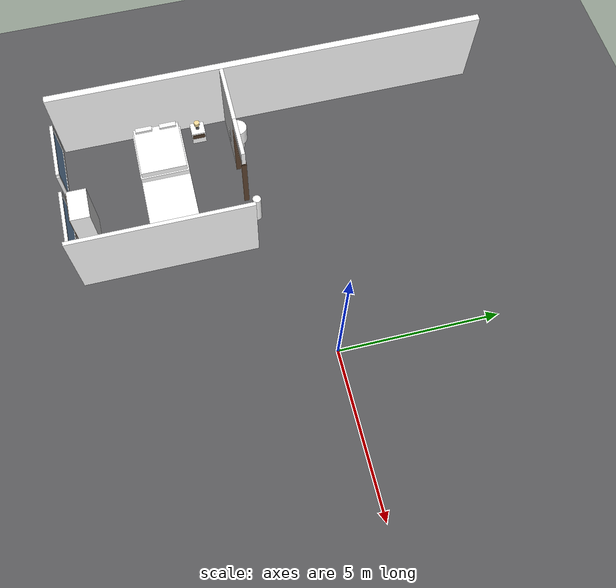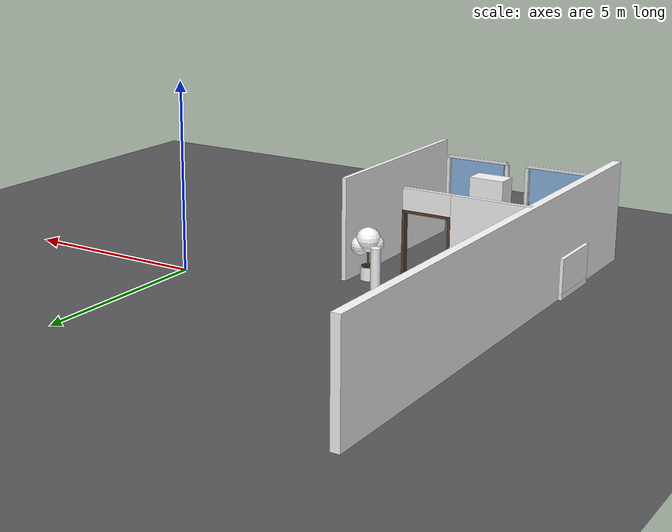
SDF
<sdf version="1.9">
 <world name="dan_house">
  <model name="ground_plane">
   <static>true</static>
   <link name="link">
    <collision name="c"><geometry><plane><normal>0 0 1</normal><size>90 90</size></plane></geometry></collision>
    <visual name="v">
     <geometry><plane><normal>0 0 1</normal><size>90 90</size></plane></geometry>
     <material><diffuse>0.35 0.35 0.36 1</diffuse></material>
    </visual>
   </link>
  </model>
  <model name="wall_west_0">
   <pose>-9.0 0.000 1.35 0 0 0</pose>
   <static>true</static>
   <link name="link">
    <collision name="c"><geometry><box><size>0.22 14.000 2.7</size></box></geometry></collision>
    <visual name="v">
     <geometry><box><size>0.22 14.000 2.7</size></box></geometry>
     <material>
      <diffuse>1 1 1 1</diffuse>
      <pbr>
       <metal>
        <albedo_map>textures/wallpaper.jpg</albedo_map>
        <metalness>0.0</metalness>
        <roughness>0.85</roughness>
       </metal>
      </pbr>
     </material>
    </visual>
   </link>
  </model>
  <model name="wall_corr_south_0">
   <pose>-7.975 -1.5 1.35 0 0 0</pose>
   <static>true</static>
   <link name="link">
    <collision name="c"><geometry><box><size>2.050 0.12 2.7</size></box></geometry></collision>
    <visual name="v">
     <geometry><box><size>2.050 0.12 2.7</size></box></geometry>
     <material>
      <diffuse>1 1 1 1</diffuse>
      <pbr>
       <metal>
        <albedo_map>textures/wallpaper.jpg</albedo_map>
        <metalness>0.0</metalness>
        <roughness>0.85</roughness>
       </metal>
      </pbr>
     </material>
    </visual>
   </link>
  </model>
  <model name="wall_corr_south_door_-6.3_p0">
   <pose>-6.915 -1.5 1.075 0 0 0</pose>
   <static>true</static>
   <link name="link">
    <visual name="v">
     <geometry><box><size>0.07 0.160 2.15</size></box></geometry>
     <material><diffuse>0.36 0.26 0.18 1</diffuse></material>
    </visual>
   </link>
  </model>
  <model name="wall_corr_south_door_-6.3_p1">
   <pose>-5.685 -1.5 1.075 0 0 0</pose>
   <static>true</static>
   <link name="link">
    <visual name="v">
     <geometry><box><size>0.07 0.160 2.15</size></box></geometry>
     <material><diffuse>0.36 0.26 0.18 1</diffuse></material>
    </visual>
   </link>
  </model>
  <model name="wall_corr_south_door_-6.3_top">
   <pose>-6.3 -1.5 2.1149999999999998 0 0 0</pose>
   <static>true</static>
   <link name="link">
    <visual name="v">
     <geometry><box><size>1.3 0.160 0.07</size></box></geometry>
     <material><diffuse>0.36 0.26 0.18 1</diffuse></material>
    </visual>
   </link>
  </model>
  <model name="wall_corr_south_door_-6.3_lintel">
   <pose>-6.3 -1.5 2.4000000000000004 0 0 0</pose>
   <static>true</static>
   <link name="link">
    <visual name="v">
     <geometry><box><size>1.3 0.12 0.600</size></box></geometry>
     <material>
      <diffuse>1 1 1 1</diffuse>
      <pbr>
       <metal>
        <albedo_map>textures/wallpaper.jpg</albedo_map>
        <metalness>0.0</metalness>
        <roughness>0.85</roughness>
       </metal>
      </pbr>
     </material>
    </visual>
   </link>
  </model>
  <model name="wall_bed1_bed2_0">
   <pose>-3.94 -4.250 1.35 0 0 0</pose>
   <static>true</static>
   <link name="link">
    <collision name="c"><geometry><box><size>0.12 5.500 2.7</size></box></geometry></collision>
    <visual name="v">
     <geometry><box><size>0.12 5.500 2.7</size></box></geometry>
     <material>
      <diffuse>1 1 1 1</diffuse>
      <pbr>
       <metal>
        <albedo_map>textures/wallpaper.jpg</albedo_map>
        <metalness>0.0</metalness>
        <roughness>0.85</roughness>
       </metal>
      </pbr>
     </material>
    </visual>
   </link>
  </model>
  <model name="window_s1">
   <pose>-7.4 -6.95 1.6 0 0 0</pose>
   <static>true</static>
   <link name="link">
    <visual name="pane">
     <geometry><box><size>1.62 0.06 1.2</size></box></geometry>
     <material><diffuse>0.55 0.72 0.9 1</diffuse><emissive>0.14 0.2 0.3</emissive></material>
    </visual>
    <visual name="ft">
     <pose>0 0 0.65 0 0 0</pose>
     <geometry><box><size>1.80 0.1 0.08</size></box></geometry>
     <material><diffuse>0.95 0.95 0.95 1</diffuse></material>
    </visual>
    <visual name="fb">
     <pose>0 0 -0.65 0 0 0</pose>
     <geometry><box><size>1.80 0.1 0.08</size></box></geometry>
     <material><diffuse>0.95 0.95 0.95 1</diffuse></material>
    </visual>
    <visual name="fl">
     <pose>-0.90 0 0 0 0 0</pose>
     <geometry><box><size>0.1 0.1 1.2</size></box></geometry>
     <material><diffuse>0.95 0.95 0.95 1</diffuse></material>
    </visual>
    <visual name="fr">
     <pose>0.90 0 0 0 0 0</pose>
     <geometry><box><size>0.1 0.1 1.2</size></box></geometry>
     <material><diffuse>0.95 0.95 0.95 1</diffuse></material>
    </visual>
   </link>
  </model>
  <model name="window_s2">
   <pose>-5.0 -6.95 1.6 0 0 0</pose>
   <static>true</static>
   <link name="link">
    <visual name="pane">
     <geometry><box><size>1.62 0.06 1.2</size></box></geometry>
     <material><diffuse>0.55 0.72 0.9 1</diffuse><emissive>0.14 0.2 0.3</emissive></material>
    </visual>
    <visual name="ft">
     <pose>0 0 0.65 0 0 0</pose>
     <geometry><box><size>1.80 0.1 0.08</size></box></geometry>
     <material><diffuse>0.95 0.95 0.95 1</diffuse></material>
    </visual>
    <visual name="fb">
     <pose>0 0 -0.65 0 0 0</pose>
     <geometry><box><size>1.80 0.1 0.08</size></box></geometry>
     <material><diffuse>0.95 0.95 0.95 1</diffuse></material>
    </visual>
    <visual name="fl">
     <pose>-0.90 0 0 0 0 0</pose>
     <geometry><box><size>0.1 0.1 1.2</size></box></geometry>
     <material><diffuse>0.95 0.95 0.95 1</diffuse></material>
    </visual>
    <visual name="fr">
     <pose>0.90 0 0 0 0 0</pose>
     <geometry><box><size>0.1 0.1 1.2</size></box></geometry>
     <material><diffuse>0.95 0.95 0.95 1</diffuse></material>
    </visual>
   </link>
  </model>
  <model name="bed">
   <pose>-8.15 -3.9 0 0 0 -1.5708</pose>
   <static>true</static>
   <link name="link">
    <collision name="c">
     <pose>0 0 0.225 0 0 0</pose>
     <geometry><box><size>1.5 2.0 0.45</size></box></geometry>
    </collision>
    <visual name="frame">
     <pose>0 0 0.11 0 0 0</pose>
     <geometry><box><size>1.6 2.1 0.22</size></box></geometry>
     <material>
      <diffuse>1 1 1 1</diffuse>
      <pbr>
       <metal>
        <albedo_map>textures/wood_dark.jpg</albedo_map>
        <metalness>0.0</metalness>
        <roughness>0.85</roughness>
       </metal>
      </pbr>
     </material>
    </visual>
    <visual name="mattress">
     <pose>0 0 0.33 0 0 0</pose>
     <geometry><box><size>1.5 2.0 0.22</size></box></geometry>
     <material>
      <diffuse>1 1 1 1</diffuse>
      <pbr>
       <metal>
        <albedo_map>textures/bedding.jpg</albedo_map>
        <metalness>0.0</metalness>
        <roughness>0.85</roughness>
       </metal>
      </pbr>
     </material>
    </visual>
    <visual name="head">
     <pose>0 -1.0 0.6 0 0 0</pose>
     <geometry><box><size>1.6 0.1 0.9</size></box></geometry>
     <material>
      <diffuse>1 1 1 1</diffuse>
      <pbr>
       <metal>
        <albedo_map>textures/wood_dark.jpg</albedo_map>
        <metalness>0.0</metalness>
        <roughness>0.85</roughness>
       </metal>
      </pbr>
     </material>
    </visual>
    <visual name="p1">
     <pose>-0.4 -0.75 0.48 0 0 0</pose>
     <geometry><box><size>0.55 0.35 0.09</size></box></geometry>
     <material><diffuse>0.95 0.95 0.95 1</diffuse></material>
    </visual>
    <visual name="p2">
     <pose>0.4 -0.75 0.48 0 0 0</pose>
     <geometry><box><size>0.55 0.35 0.09</size></box></geometry>
     <material><diffuse>0.95 0.95 0.95 1</diffuse></material>
    </visual>
   </link>
  </model>
  <model name="nightstand">
   <pose>-8.45 -2.55 0 0 0 0.0</pose>
   <static>true</static>
   <link name="link">
    <collision name="c">
     <pose>0 0 0.250 0 0 0</pose>
     <geometry><box><size>0.45 0.45 0.500</size></box></geometry>
    </collision>
    <visual name="body">
     <pose>0 0 0.250 0 0 0</pose>
     <geometry><box><size>0.45 0.45 0.500</size></box></geometry>
     <material>
      <diffuse>1 1 1 1</diffuse>
      <pbr>
       <metal>
        <albedo_map>textures/wood_dark.jpg</albedo_map>
        <metalness>0.0</metalness>
        <roughness>0.85</roughness>
       </metal>
      </pbr>
     </material>
    </visual>
    <visual name="drawer">
     <pose>0.235 0 0.350 0 0 0</pose>
     <geometry><box><size>0.02 0.4 0.18</size></box></geometry>
     <material><diffuse>0.3 0.22 0.15 1</diffuse></material>
    </visual>
    <visual name="lb">
     <pose>0 0 0.510 0 0 0</pose>
     <geometry><cylinder><radius>0.06</radius><length>0.02</length></cylinder></geometry>
     <material><diffuse>0.3 0.3 0.3 1</diffuse></material>
    </visual>
    <visual name="lp">
     <pose>0 0 0.610 0 0 0</pose>
     <geometry><cylinder><radius>0.015</radius><length>0.18</length></cylinder></geometry>
     <material><diffuse>0.3 0.3 0.3 1</diffuse></material>
    </visual>
    <visual name="ls">
     <pose>0 0 0.750 0 0 0</pose>
     <geometry><cylinder><radius>0.09</radius><length>0.12</length></cylinder></geometry>
     <material><diffuse>0.95 0.85 0.6 1</diffuse><emissive>0.55 0.45 0.28</emissive></material>
    </visual>
   </link>
  </model>
  <model name="wardrobe">
   <pose>-5.6 -6.55 0 0 0 0.0</pose>
   <static>true</static>
   <link name="link">
    <collision name="c">
     <pose>0 0 0.95 0 0 0</pose>
     <geometry><box><size>1.0 0.6 1.9</size></box></geometry>
    </collision>
    <visual name="body">
     <pose>0 0 0.95 0 0 0</pose>
     <geometry><box><size>1.0 0.6 1.9</size></box></geometry>
     <material>
      <diffuse>1 1 1 1</diffuse>
      <pbr>
       <metal>
        <albedo_map>textures/wood_dark.jpg</albedo_map>
        <metalness>0.0</metalness>
        <roughness>0.85</roughness>
       </metal>
      </pbr>
     </material>
    </visual>
    <visual name="d1">
     <pose>-0.245 -0.31 0.95 0 0 0</pose>
     <geometry><box><size>0.48 0.02 1.8</size></box></geometry>
     <material><diffuse>0.42 0.32 0.22 1</diffuse></material>
    </visual>
    <visual name="d2">
     <pose>0.245 -0.31 0.95 0 0 0</pose>
     <geometry><box><size>0.48 0.02 1.8</size></box></geometry>
     <material><diffuse>0.45 0.35 0.25 1</diffuse></material>
    </visual>
    <visual name="h1">
     <pose>-0.05 -0.33 1.0 0 0 0</pose>
     <geometry><box><size>0.03 0.03 0.12</size></box></geometry>
     <material><diffuse>0.7 0.7 0.72 1</diffuse></material>
    </visual>
    <visual name="h2">
     <pose>0.05 -0.33 1.0 0 0 0</pose>
     <geometry><box><size>0.03 0.03 0.12</size></box></geometry>
     <material><diffuse>0.7 0.7 0.72 1</diffuse></material>
    </visual>
   </link>
  </model>
  <model name="rug_2">
   <pose>-6.4 -3.9 0.0125 0 0 0.0</pose>
   <static>true</static>
   <link name="link">
    <visual name="v">
     <geometry><box><size>2.2 1.6 0.008</size></box></geometry>
     <material>
      <diffuse>1 1 1 1</diffuse>
      <pbr>
       <metal><albedo_map>textures/rug.jpg</albedo_map><metalness>0.0</metalness><roughness>0.85</roughness></metal>
      </pbr>
     </material>
    </visual>
   </link>
  </model>
  <model name="plant_3">
   <pose>-4.4 -1.95 0 0 0 0</pose>
   <static>true</static>
   <link name="link">
    <collision name="pot_c">
     <pose>0 0 0.175 0 0 0</pose>
     <geometry><cylinder><radius>0.2</radius><length>0.35</length></cylinder></geometry>
    </collision>
    <collision name="leaf_c">
     <pose>0 0 0.8 0 0 0</pose>
     <geometry><cylinder><radius>0.38</radius><length>0.9</length></cylinder></geometry>
    </collision>
    <visual name="pot">
     <pose>0 0 0.175 0 0 0</pose>
     <geometry><cylinder><radius>0.2</radius><length>0.35</length></cylinder></geometry>
     <material>
      <diffuse>1 1 1 1</diffuse>
      <pbr>
       <metal>
        <albedo_map>textures/terracotta.jpg</albedo_map>
        <metalness>0.0</metalness>
        <roughness>0.85</roughness>
       </metal>
      </pbr>
     </material>
    </visual>
    <visual name="soil">
     <pose>0 0 0.36 0 0 0</pose>
     <geometry><cylinder><radius>0.18</radius><length>0.02</length></cylinder></geometry>
     <material><diffuse>0.2 0.14 0.1 1</diffuse></material>
    </visual>
    <visual name="trunk">
     <pose>0 0 0.63 0 0 0</pose>
     <geometry><cylinder><radius>0.03</radius><length>0.55</length></cylinder></geometry>
     <material><diffuse>0.35 0.25 0.15 1</diffuse></material>
    </visual>
    <visual name="lf1">
     <pose>0 0 1.05 0 0 0</pose>
     <geometry><sphere><radius>0.32</radius></sphere></geometry>
     <material>
      <diffuse>1 1 1 1</diffuse>
      <pbr>
       <metal><albedo_map>textures/leaf.jpg</albedo_map><metalness>0.0</metalness><roughness>0.85</roughness></metal>
      </pbr>
     </material>
    </visual>
    <visual name="lf2">
     <pose>0.18 0.1 0.9 0 0 0</pose>
     <geometry><sphere><radius>0.24</radius></sphere></geometry>
     <material>
      <diffuse>1 1 1 1</diffuse>
      <pbr>
       <metal><albedo_map>textures/leaf.jpg</albedo_map><metalness>0.0</metalness><roughness>0.85</roughness></metal>
      </pbr>
     </material>
    </visual>
    <visual name="lf3">
     <pose>-0.15 -0.1 0.95 0 0 0</pose>
     <geometry><sphere><radius>0.22</radius></sphere></geometry>
     <material>
      <diffuse>1 1 1 1</diffuse>
      <pbr>
       <metal><albedo_map>textures/leaf.jpg</albedo_map><metalness>0.0</metalness><roughness>0.85</roughness></metal>
      </pbr>
     </material>
    </visual>
   </link>
  </model>
  <model name="potted_plant">
   <pose>-7.8 -1.29 0 0 0 0</pose>
   <static>true</static>
   <link name="link">
    <collision name="c_base">
     <pose>0 0 0.21 0 0 0</pose>
     <geometry><cylinder><radius>0.19</radius><length>0.42</length></cylinder></geometry>
    </collision>
    <visual name="v_base">
     <pose>0 0 0.21 0 0 0</pose>
     <geometry><cylinder><radius>0.19</radius><length>0.42</length></cylinder></geometry>
     <material>
      <diffuse>1 1 1 1</diffuse>
      <pbr>
       <metal>
        <albedo_map>textures/terracotta.jpg</albedo_map>
        <metalness>0.0</metalness>
        <roughness>0.85</roughness>
       </metal>
      </pbr>
     </material>
    </visual>
    <visual name="v_leaf">
     <pose>0 0 0.72 0 0 0</pose>
     <geometry><cylinder><radius>0.28500000000000003</radius><length>0.6</length></cylinder></geometry>
     <material>
      <diffuse>1 1 1 1</diffuse>
      <pbr>
       <metal><albedo_map>textures/leaf.jpg</albedo_map><metalness>0.0</metalness><roughness>0.85</roughness></metal>
      </pbr>
     </material>
    </visual>
   </link>
  </model>
  <model name="umbrella_stand">
   <pose>-5.0 -1.29 0 0 0 0</pose>
   <static>true</static>
   <link name="link">
    <collision name="c">
     <pose>0 0 0.55 0 0 0</pose>
     <geometry><cylinder><radius>0.13</radius><length>1.1</length></cylinder></geometry>
    </collision>
    <visual name="body">
     <pose>0 0 0.55 0 0 0</pose>
     <geometry><cylinder><radius>0.13</radius><length>1.1</length></cylinder></geometry>
     <material>
      <diffuse>1 1 1 1</diffuse>
      <pbr>
       <metal>
        <albedo_map>textures/metal.jpg</albedo_map>
        <metalness>0.0</metalness>
        <roughness>0.85</roughness>
       </metal>
      </pbr>
     </material>
    </visual>
   </link>
  </model>
 </world>
</sdf>
